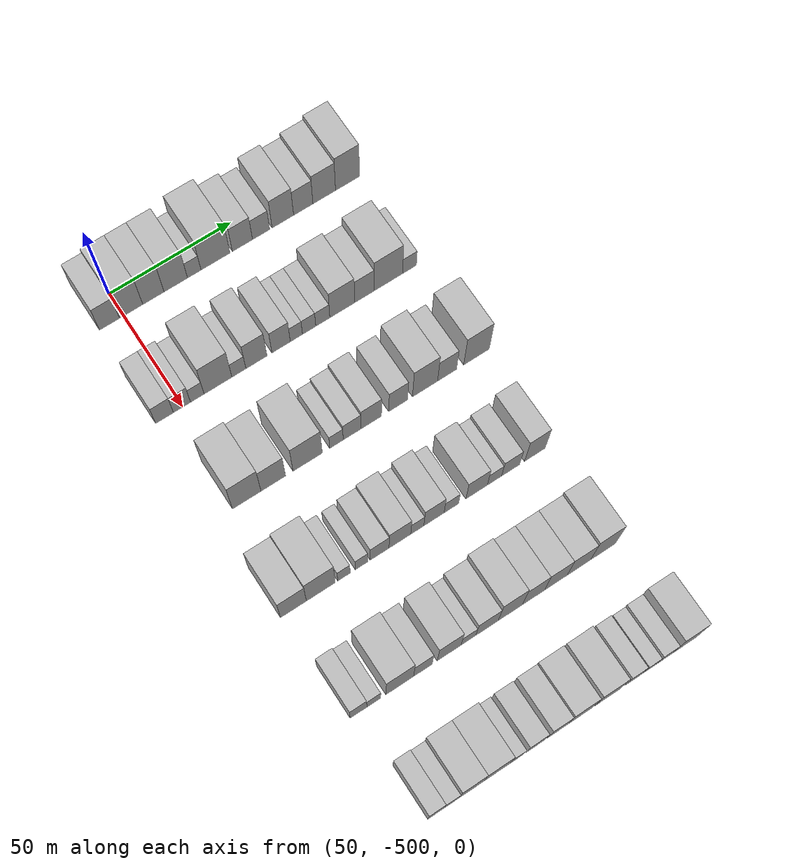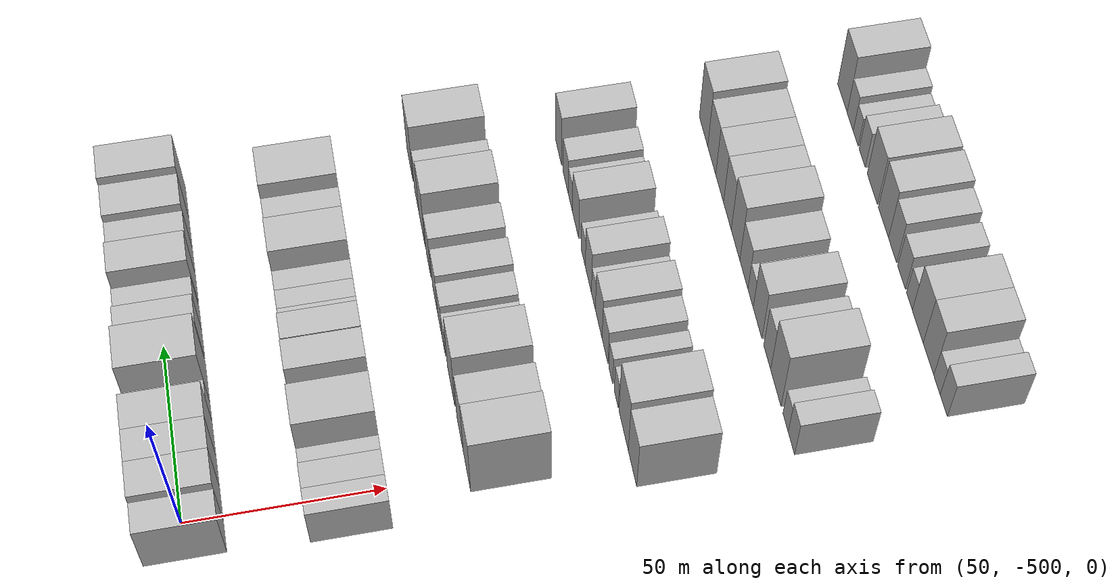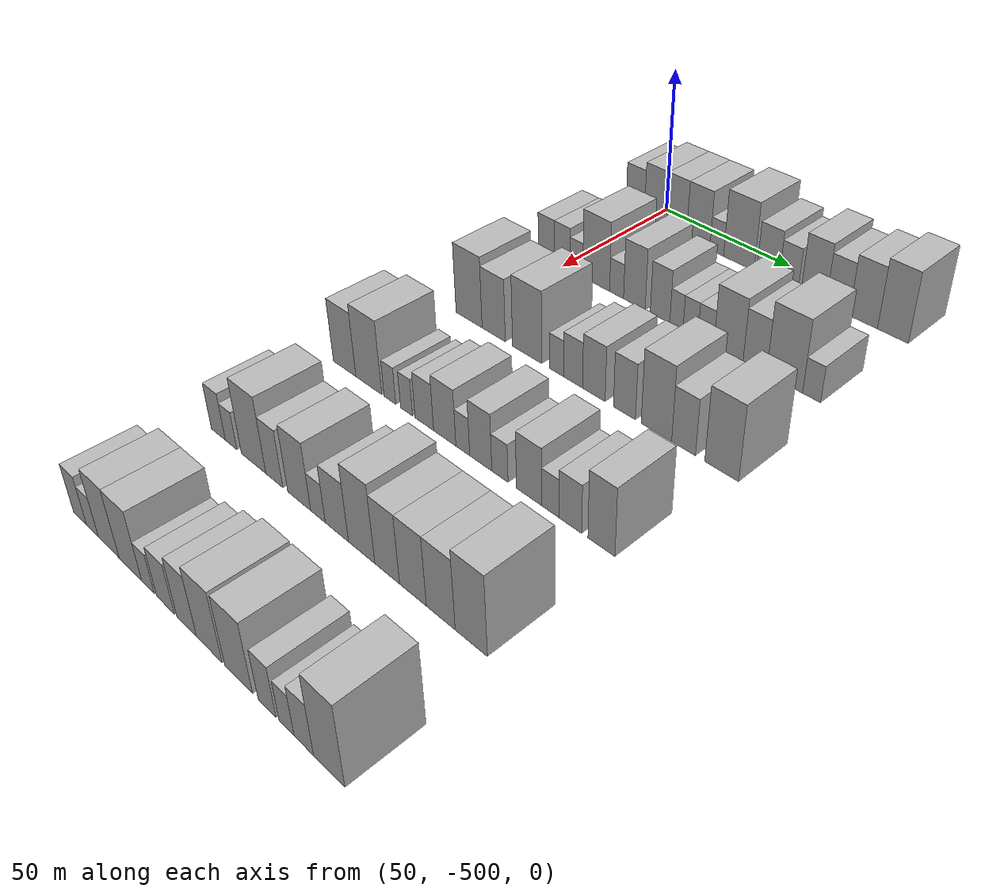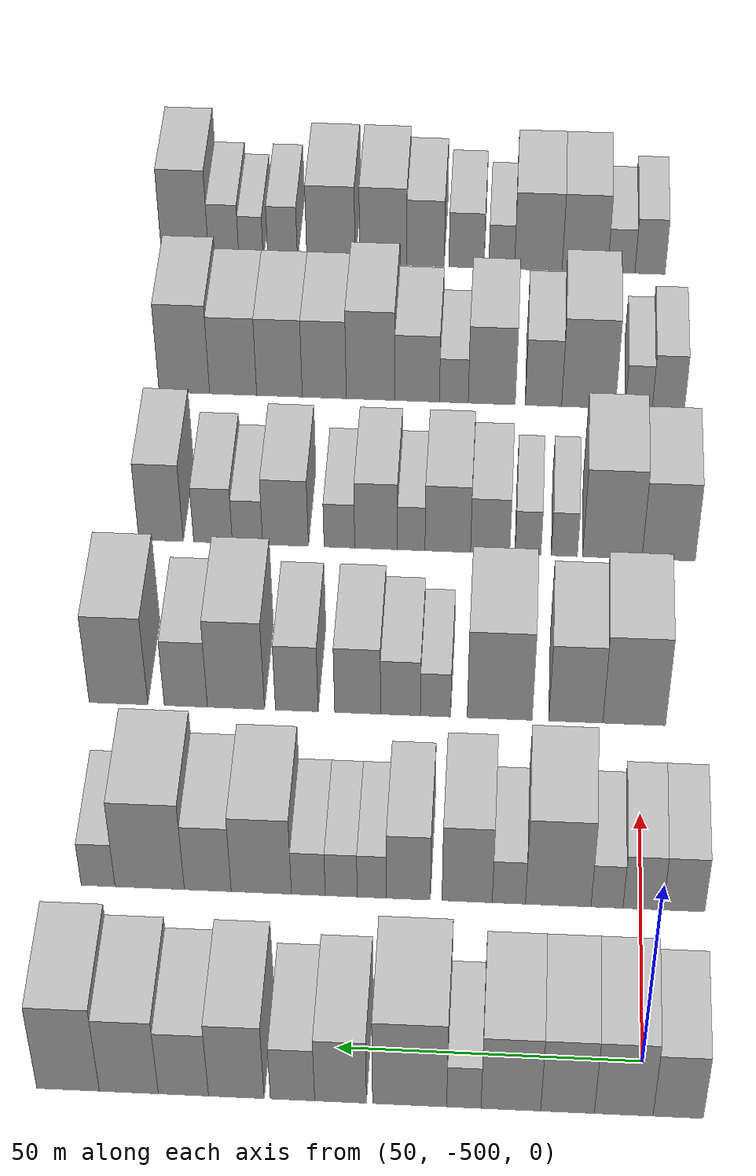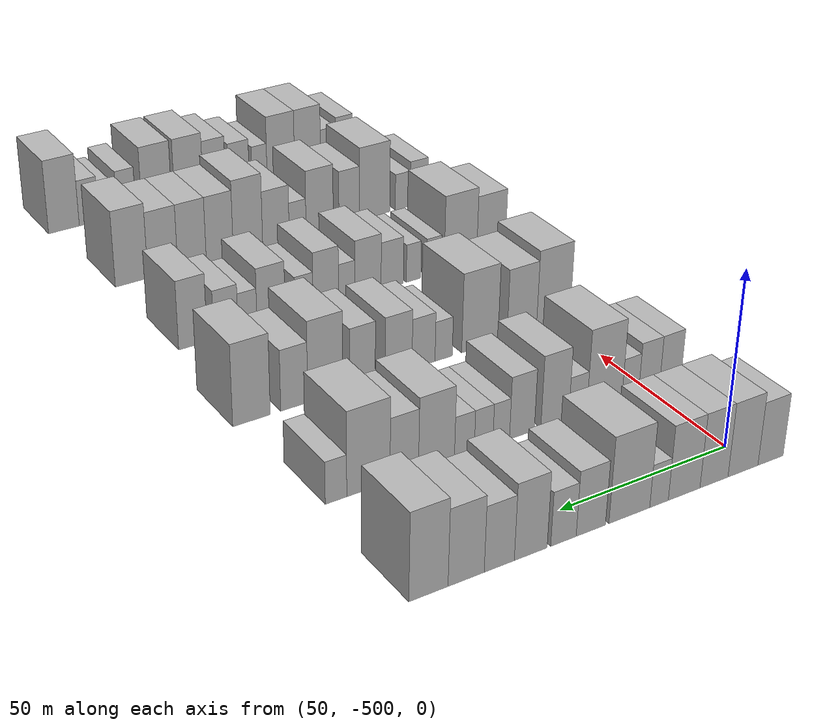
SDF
<sdf version="1.6">
 <world name="default">
  <model name="building_13">
   <static>1</static>
   <pose>50.0000 -505.6441 0 0.000000 0.000000 0.000000</pose>
   <link name="link">
    <pose>0 0 9.00 0 0 0</pose>
    <collision name="collision"><geometry><box><size>20.0000 8.0763 18.0000</size></box></geometry></collision>
    <visual name="visual">
     <cast_shadows>0</cast_shadows>
     <geometry><box><size>20.0000 8.0763 18.0000</size></box></geometry>
     <material>
      <script>
       <uri>model://HANNAS_wall/materials/scripts</uri>
       <uri>model://HANNAS_wall/materials/textures</uri>
       <name>vrc/HANNAS_wall</name>
      </script>
     </material>
    </visual>
   </link>
  </model>
  <model name="building_14">
   <static>1</static>
   <pose>50.0000 -496.8923 0 0.000000 0.000000 0.000000</pose>
   <link name="link">
    <pose>0 0 10.50 0 0 0</pose>
    <collision name="collision"><geometry><box><size>20.0000 9.4271 21.0000</size></box></geometry></collision>
    <visual name="visual">
     <cast_shadows>0</cast_shadows>
     <geometry><box><size>20.0000 9.4271 21.0000</size></box></geometry>
     <material>
      <script>
       <uri>model://HANNAS_wall/materials/scripts</uri>
       <uri>model://HANNAS_wall/materials/textures</uri>
       <name>vrc/HANNAS_wall</name>
      </script>
     </material>
    </visual>
   </link>
  </model>
  <model name="building_15">
   <static>1</static>
   <pose>50.0000 -487.8517 0 0.000000 0.000000 0.000000</pose>
   <link name="link">
    <pose>0 0 10.50 0 0 0</pose>
    <collision name="collision"><geometry><box><size>20.0000 8.6542 21.0000</size></box></geometry></collision>
    <visual name="visual">
     <cast_shadows>0</cast_shadows>
     <geometry><box><size>20.0000 8.6542 21.0000</size></box></geometry>
     <material>
      <script>
       <uri>model://HANNAS_wall/materials/scripts</uri>
       <uri>model://HANNAS_wall/materials/textures</uri>
       <name>vrc/HANNAS_wall</name>
      </script>
     </material>
    </visual>
   </link>
  </model>
  <model name="building_16">
   <static>1</static>
   <pose>50.0000 -478.7148 0 0.000000 0.000000 0.000000</pose>
   <link name="link">
    <pose>0 0 10.50 0 0 0</pose>
    <collision name="collision"><geometry><box><size>20.0000 9.6195 21.0000</size></box></geometry></collision>
    <visual name="visual">
     <cast_shadows>0</cast_shadows>
     <geometry><box><size>20.0000 9.6195 21.0000</size></box></geometry>
     <material>
      <script>
       <uri>model://HANNAS_wall/materials/scripts</uri>
       <uri>model://HANNAS_wall/materials/textures</uri>
       <name>vrc/HANNAS_wall</name>
      </script>
     </material>
    </visual>
   </link>
  </model>
  <model name="building_17">
   <static>1</static>
   <pose>50.0000 -471.1349 0 0.000000 0.000000 0.000000</pose>
   <link name="link">
    <pose>0 0 6.00 0 0 0</pose>
    <collision name="collision"><geometry><box><size>20.0000 5.5403 12.0000</size></box></geometry></collision>
    <visual name="visual">
     <cast_shadows>0</cast_shadows>
     <geometry><box><size>20.0000 5.5403 12.0000</size></box></geometry>
     <material>
      <script>
       <uri>model://HANNAS_wall/materials/scripts</uri>
       <uri>model://HANNAS_wall/materials/textures</uri>
       <name>vrc/HANNAS_wall</name>
      </script>
     </material>
    </visual>
   </link>
  </model>
  <model name="building_18">
   <static>1</static>
   <pose>50.0000 -462.3846 0 0.000000 0.000000 0.000000</pose>
   <link name="link">
    <pose>0 0 12.00 0 0 0</pose>
    <collision name="collision"><geometry><box><size>20.0000 11.9603 24.0000</size></box></geometry></collision>
    <visual name="visual">
     <cast_shadows>0</cast_shadows>
     <geometry><box><size>20.0000 11.9603 24.0000</size></box></geometry>
     <material>
      <script>
       <uri>model://HANNAS_wall/materials/scripts</uri>
       <uri>model://HANNAS_wall/materials/textures</uri>
       <name>vrc/HANNAS_wall</name>
      </script>
     </material>
    </visual>
   </link>
  </model>
  <model name="building_19">
   <static>1</static>
   <pose>50.0000 -451.2160 0 0.000000 0.000000 0.000000</pose>
   <link name="link">
    <pose>0 0 9.00 0 0 0</pose>
    <collision name="collision"><geometry><box><size>20.0000 8.3768 18.0000</size></box></geometry></collision>
    <visual name="visual">
     <cast_shadows>0</cast_shadows>
     <geometry><box><size>20.0000 8.3768 18.0000</size></box></geometry>
     <material>
      <script>
       <uri>model://HANNAS_wall/materials/scripts</uri>
       <uri>model://HANNAS_wall/materials/textures</uri>
       <name>vrc/HANNAS_wall</name>
      </script>
     </material>
    </visual>
   </link>
  </model>
  <model name="building_20">
   <static>1</static>
   <pose>50.0000 -443.4394 0 0.000000 0.000000 0.000000</pose>
   <link name="link">
    <pose>0 0 7.50 0 0 0</pose>
    <collision name="collision"><geometry><box><size>20.0000 7.1763 15.0000</size></box></geometry></collision>
    <visual name="visual">
     <cast_shadows>0</cast_shadows>
     <geometry><box><size>20.0000 7.1763 15.0000</size></box></geometry>
     <material>
      <script>
       <uri>model://HANNAS_wall/materials/scripts</uri>
       <uri>model://HANNAS_wall/materials/textures</uri>
       <name>vrc/HANNAS_wall</name>
      </script>
     </material>
    </visual>
   </link>
  </model>
  <model name="building_21">
   <static>1</static>
   <pose>50.0000 -434.3271 0 0.000000 0.000000 0.000000</pose>
   <link name="link">
    <pose>0 0 10.50 0 0 0</pose>
    <collision name="collision"><geometry><box><size>20.0000 9.0483 21.0000</size></box></geometry></collision>
    <visual name="visual">
     <cast_shadows>0</cast_shadows>
     <geometry><box><size>20.0000 9.0483 21.0000</size></box></geometry>
     <material>
      <script>
       <uri>model://HANNAS_wall/materials/scripts</uri>
       <uri>model://HANNAS_wall/materials/textures</uri>
       <name>vrc/HANNAS_wall</name>
      </script>
     </material>
    </visual>
   </link>
  </model>
  <model name="building_22">
   <static>1</static>
   <pose>50.0000 -425.7287 0 0.000000 0.000000 0.000000</pose>
   <link name="link">
    <pose>0 0 9.00 0 0 0</pose>
    <collision name="collision"><geometry><box><size>20.0000 8.1485 18.0000</size></box></geometry></collision>
    <visual name="visual">
     <cast_shadows>0</cast_shadows>
     <geometry><box><size>20.0000 8.1485 18.0000</size></box></geometry>
     <material>
      <script>
       <uri>model://HANNAS_wall/materials/scripts</uri>
       <uri>model://HANNAS_wall/materials/textures</uri>
       <name>vrc/HANNAS_wall</name>
      </script>
     </material>
    </visual>
   </link>
  </model>
  <model name="building_23">
   <static>1</static>
   <pose>50.0000 -416.8544 0 0.000000 0.000000 0.000000</pose>
   <link name="link">
    <pose>0 0 10.50 0 0 0</pose>
    <collision name="collision"><geometry><box><size>20.0000 9.6000 21.0000</size></box></geometry></collision>
    <visual name="visual">
     <cast_shadows>0</cast_shadows>
     <geometry><box><size>20.0000 9.6000 21.0000</size></box></geometry>
     <material>
      <script>
       <uri>model://HANNAS_wall/materials/scripts</uri>
       <uri>model://HANNAS_wall/materials/textures</uri>
       <name>vrc/HANNAS_wall</name>
      </script>
     </material>
    </visual>
   </link>
  </model>
  <model name="building_24">
   <static>1</static>
   <pose>50.0000 -406.9556 0 0.000000 0.000000 0.000000</pose>
   <link name="link">
    <pose>0 0 12.00 0 0 0</pose>
    <collision name="collision"><geometry><box><size>20.0000 10.1977 24.0000</size></box></geometry></collision>
    <visual name="visual">
     <cast_shadows>0</cast_shadows>
     <geometry><box><size>20.0000 10.1977 24.0000</size></box></geometry>
     <material>
      <script>
       <uri>model://HANNAS_wall/materials/scripts</uri>
       <uri>model://HANNAS_wall/materials/textures</uri>
       <name>vrc/HANNAS_wall</name>
      </script>
     </material>
    </visual>
   </link>
  </model>
  <model name="building_150">
   <static>1</static>
   <pose>90.0000 -507.3038 0 0.000000 0.000000 0.000000</pose>
   <link name="link">
    <pose>0 0 7.50 0 0 0</pose>
    <collision name="collision"><geometry><box><size>20.0000 7.0903 15.0000</size></box></geometry></collision>
    <visual name="visual">
     <cast_shadows>0</cast_shadows>
     <geometry><box><size>20.0000 7.0903 15.0000</size></box></geometry>
     <material>
      <script>
       <uri>model://HANNAS_wall/materials/scripts</uri>
       <uri>model://HANNAS_wall/materials/textures</uri>
       <name>vrc/HANNAS_wall</name>
      </script>
     </material>
    </visual>
   </link>
  </model>
  <model name="building_151">
   <static>1</static>
   <pose>90.0000 -500.3334 0 0.000000 0.000000 0.000000</pose>
   <link name="link">
    <pose>0 0 7.50 0 0 0</pose>
    <collision name="collision"><geometry><box><size>20.0000 6.8506 15.0000</size></box></geometry></collision>
    <visual name="visual">
     <cast_shadows>0</cast_shadows>
     <geometry><box><size>20.0000 6.8506 15.0000</size></box></geometry>
     <material>
      <script>
       <uri>model://HANNAS_wall/materials/scripts</uri>
       <uri>model://HANNAS_wall/materials/textures</uri>
       <name>vrc/HANNAS_wall</name>
      </script>
     </material>
    </visual>
   </link>
  </model>
  <model name="building_152">
   <static>1</static>
   <pose>90.0000 -494.1886 0 0.000000 0.000000 0.000000</pose>
   <link name="link">
    <pose>0 0 6.00 0 0 0</pose>
    <collision name="collision"><geometry><box><size>20.0000 5.4390 12.0000</size></box></geometry></collision>
    <visual name="visual">
     <cast_shadows>0</cast_shadows>
     <geometry><box><size>20.0000 5.4390 12.0000</size></box></geometry>
     <material>
      <script>
       <uri>model://HANNAS_wall/materials/scripts</uri>
       <uri>model://HANNAS_wall/materials/textures</uri>
       <name>vrc/HANNAS_wall</name>
      </script>
     </material>
    </visual>
   </link>
  </model>
  <model name="building_153">
   <static>1</static>
   <pose>90.0000 -485.8683 0 0.000000 0.000000 0.000000</pose>
   <link name="link">
    <pose>0 0 12.00 0 0 0</pose>
    <collision name="collision"><geometry><box><size>20.0000 11.2016 24.0000</size></box></geometry></collision>
    <visual name="visual">
     <cast_shadows>0</cast_shadows>
     <geometry><box><size>20.0000 11.2016 24.0000</size></box></geometry>
     <material>
      <script>
       <uri>model://HANNAS_wall/materials/scripts</uri>
       <uri>model://HANNAS_wall/materials/textures</uri>
       <name>vrc/HANNAS_wall</name>
      </script>
     </material>
    </visual>
   </link>
  </model>
  <model name="building_154">
   <static>1</static>
   <pose>90.0000 -477.4317 0 0.000000 0.000000 0.000000</pose>
   <link name="link">
    <pose>0 0 6.00 0 0 0</pose>
    <collision name="collision"><geometry><box><size>20.0000 5.6716 12.0000</size></box></geometry></collision>
    <visual name="visual">
     <cast_shadows>0</cast_shadows>
     <geometry><box><size>20.0000 5.6716 12.0000</size></box></geometry>
     <material>
      <script>
       <uri>model://HANNAS_wall/materials/scripts</uri>
       <uri>model://HANNAS_wall/materials/textures</uri>
       <name>vrc/HANNAS_wall</name>
      </script>
     </material>
    </visual>
   </link>
  </model>
  <model name="building_155">
   <static>1</static>
   <pose>90.0000 -470.3024 0 0.000000 0.000000 0.000000</pose>
   <link name="link">
    <pose>0 0 10.50 0 0 0</pose>
    <collision name="collision"><geometry><box><size>20.0000 8.5871 21.0000</size></box></geometry></collision>
    <visual name="visual">
     <cast_shadows>0</cast_shadows>
     <geometry><box><size>20.0000 8.5871 21.0000</size></box></geometry>
     <material>
      <script>
       <uri>model://HANNAS_wall/materials/scripts</uri>
       <uri>model://HANNAS_wall/materials/textures</uri>
       <name>vrc/HANNAS_wall</name>
      </script>
     </material>
    </visual>
   </link>
  </model>
  <model name="building_156">
   <static>1</static>
   <pose>90.0000 -460.2430 0 0.000000 0.000000 0.000000</pose>
   <link name="link">
    <pose>0 0 9.00 0 0 0</pose>
    <collision name="collision"><geometry><box><size>20.0000 7.5317 18.0000</size></box></geometry></collision>
    <visual name="visual">
     <cast_shadows>0</cast_shadows>
     <geometry><box><size>20.0000 7.5317 18.0000</size></box></geometry>
     <material>
      <script>
       <uri>model://HANNAS_wall/materials/scripts</uri>
       <uri>model://HANNAS_wall/materials/textures</uri>
       <name>vrc/HANNAS_wall</name>
      </script>
     </material>
    </visual>
   </link>
  </model>
  <model name="building_157">
   <static>1</static>
   <pose>90.0000 -453.9804 0 0.000000 0.000000 0.000000</pose>
   <link name="link">
    <pose>0 0 6.00 0 0 0</pose>
    <collision name="collision"><geometry><box><size>20.0000 4.9935 12.0000</size></box></geometry></collision>
    <visual name="visual">
     <cast_shadows>0</cast_shadows>
     <geometry><box><size>20.0000 4.9935 12.0000</size></box></geometry>
     <material>
      <script>
       <uri>model://HANNAS_wall/materials/scripts</uri>
       <uri>model://HANNAS_wall/materials/textures</uri>
       <name>vrc/HANNAS_wall</name>
      </script>
     </material>
    </visual>
   </link>
  </model>
  <model name="building_158">
   <static>1</static>
   <pose>90.0000 -448.7401 0 0.000000 0.000000 0.000000</pose>
   <link name="link">
    <pose>0 0 6.00 0 0 0</pose>
    <collision name="collision"><geometry><box><size>20.0000 5.4872 12.0000</size></box></geometry></collision>
    <visual name="visual">
     <cast_shadows>0</cast_shadows>
     <geometry><box><size>20.0000 5.4872 12.0000</size></box></geometry>
     <material>
      <script>
       <uri>model://HANNAS_wall/materials/scripts</uri>
       <uri>model://HANNAS_wall/materials/textures</uri>
       <name>vrc/HANNAS_wall</name>
      </script>
     </material>
    </visual>
   </link>
  </model>
  <model name="building_159">
   <static>1</static>
   <pose>90.0000 -443.0930 0 0.000000 0.000000 0.000000</pose>
   <link name="link">
    <pose>0 0 6.00 0 0 0</pose>
    <collision name="collision"><geometry><box><size>20.0000 5.8069 12.0000</size></box></geometry></collision>
    <visual name="visual">
     <cast_shadows>0</cast_shadows>
     <geometry><box><size>20.0000 5.8069 12.0000</size></box></geometry>
     <material>
      <script>
       <uri>model://HANNAS_wall/materials/scripts</uri>
       <uri>model://HANNAS_wall/materials/textures</uri>
       <name>vrc/HANNAS_wall</name>
      </script>
     </material>
    </visual>
   </link>
  </model>
  <model name="building_160">
   <static>1</static>
   <pose>90.0000 -435.0100 0 0.000000 0.000000 0.000000</pose>
   <link name="link">
    <pose>0 0 10.50 0 0 0</pose>
    <collision name="collision"><geometry><box><size>20.0000 10.3591 21.0000</size></box></geometry></collision>
    <visual name="visual">
     <cast_shadows>0</cast_shadows>
     <geometry><box><size>20.0000 10.3591 21.0000</size></box></geometry>
     <material>
      <script>
       <uri>model://HANNAS_wall/materials/scripts</uri>
       <uri>model://HANNAS_wall/materials/textures</uri>
       <name>vrc/HANNAS_wall</name>
      </script>
     </material>
    </visual>
   </link>
  </model>
  <model name="building_161">
   <static>1</static>
   <pose>90.0000 -425.7991 0 0.000000 0.000000 0.000000</pose>
   <link name="link">
    <pose>0 0 9.00 0 0 0</pose>
    <collision name="collision"><geometry><box><size>20.0000 8.0628 18.0000</size></box></geometry></collision>
    <visual name="visual">
     <cast_shadows>0</cast_shadows>
     <geometry><box><size>20.0000 8.0628 18.0000</size></box></geometry>
     <material>
      <script>
       <uri>model://HANNAS_wall/materials/scripts</uri>
       <uri>model://HANNAS_wall/materials/textures</uri>
       <name>vrc/HANNAS_wall</name>
      </script>
     </material>
    </visual>
   </link>
  </model>
  <model name="building_162">
   <static>1</static>
   <pose>90.0000 -415.7887 0 0.000000 0.000000 0.000000</pose>
   <link name="link">
    <pose>0 0 12.00 0 0 0</pose>
    <collision name="collision"><geometry><box><size>20.0000 11.9579 24.0000</size></box></geometry></collision>
    <visual name="visual">
     <cast_shadows>0</cast_shadows>
     <geometry><box><size>20.0000 11.9579 24.0000</size></box></geometry>
     <material>
      <script>
       <uri>model://HANNAS_wall/materials/scripts</uri>
       <uri>model://HANNAS_wall/materials/textures</uri>
       <name>vrc/HANNAS_wall</name>
      </script>
     </material>
    </visual>
   </link>
  </model>
  <model name="building_163">
   <static>1</static>
   <pose>90.0000 -406.8864 0 0.000000 0.000000 0.000000</pose>
   <link name="link">
    <pose>0 0 6.00 0 0 0</pose>
    <collision name="collision"><geometry><box><size>20.0000 5.8468 12.0000</size></box></geometry></collision>
    <visual name="visual">
     <cast_shadows>0</cast_shadows>
     <geometry><box><size>20.0000 5.8468 12.0000</size></box></geometry>
     <material>
      <script>
       <uri>model://HANNAS_wall/materials/scripts</uri>
       <uri>model://HANNAS_wall/materials/textures</uri>
       <name>vrc/HANNAS_wall</name>
      </script>
     </material>
    </visual>
   </link>
  </model>
  <model name="building_288">
   <static>1</static>
   <pose>130.0000 -499.0810 0 0.000000 0.000000 0.000000</pose>
   <link name="link">
    <pose>0 0 12.00 0 0 0</pose>
    <collision name="collision"><geometry><box><size>20.0000 11.2853 24.0000</size></box></geometry></collision>
    <visual name="visual">
     <cast_shadows>0</cast_shadows>
     <geometry><box><size>20.0000 11.2853 24.0000</size></box></geometry>
     <material>
      <script>
       <uri>model://HANNAS_wall/materials/scripts</uri>
       <uri>model://HANNAS_wall/materials/textures</uri>
       <name>vrc/HANNAS_wall</name>
      </script>
     </material>
    </visual>
   </link>
  </model>
  <model name="building_289">
   <static>1</static>
   <pose>130.0000 -488.5626 0 0.000000 0.000000 0.000000</pose>
   <link name="link">
    <pose>0 0 10.50 0 0 0</pose>
    <collision name="collision"><geometry><box><size>20.0000 9.7516 21.0000</size></box></geometry></collision>
    <visual name="visual">
     <cast_shadows>0</cast_shadows>
     <geometry><box><size>20.0000 9.7516 21.0000</size></box></geometry>
     <material>
      <script>
       <uri>model://HANNAS_wall/materials/scripts</uri>
       <uri>model://HANNAS_wall/materials/textures</uri>
       <name>vrc/HANNAS_wall</name>
      </script>
     </material>
    </visual>
   </link>
  </model>
  <model name="building_290">
   <static>1</static>
   <pose>130.0000 -474.8229 0 0.000000 0.000000 0.000000</pose>
   <link name="link">
    <pose>0 0 12.00 0 0 0</pose>
    <collision name="collision"><geometry><box><size>20.0000 11.7278 24.0000</size></box></geometry></collision>
    <visual name="visual">
     <cast_shadows>0</cast_shadows>
     <geometry><box><size>20.0000 11.7278 24.0000</size></box></geometry>
     <material>
      <script>
       <uri>model://HANNAS_wall/materials/scripts</uri>
       <uri>model://HANNAS_wall/materials/textures</uri>
       <name>vrc/HANNAS_wall</name>
      </script>
     </material>
    </visual>
   </link>
  </model>
  <model name="building_291">
   <static>1</static>
   <pose>130.0000 -463.2219 0 0.000000 0.000000 0.000000</pose>
   <link name="link">
    <pose>0 0 6.00 0 0 0</pose>
    <collision name="collision"><geometry><box><size>20.0000 5.4742 12.0000</size></box></geometry></collision>
    <visual name="visual">
     <cast_shadows>0</cast_shadows>
     <geometry><box><size>20.0000 5.4742 12.0000</size></box></geometry>
     <material>
      <script>
       <uri>model://HANNAS_wall/materials/scripts</uri>
       <uri>model://HANNAS_wall/materials/textures</uri>
       <name>vrc/HANNAS_wall</name>
      </script>
     </material>
    </visual>
   </link>
  </model>
  <model name="building_292">
   <static>1</static>
   <pose>130.0000 -456.8856 0 0.000000 0.000000 0.000000</pose>
   <link name="link">
    <pose>0 0 7.50 0 0 0</pose>
    <collision name="collision"><geometry><box><size>20.0000 7.1985 15.0000</size></box></geometry></collision>
    <visual name="visual">
     <cast_shadows>0</cast_shadows>
     <geometry><box><size>20.0000 7.1985 15.0000</size></box></geometry>
     <material>
      <script>
       <uri>model://HANNAS_wall/materials/scripts</uri>
       <uri>model://HANNAS_wall/materials/textures</uri>
       <name>vrc/HANNAS_wall</name>
      </script>
     </material>
    </visual>
   </link>
  </model>
  <model name="building_293">
   <static>1</static>
   <pose>130.0000 -449.1298 0 0.000000 0.000000 0.000000</pose>
   <link name="link">
    <pose>0 0 9.00 0 0 0</pose>
    <collision name="collision"><geometry><box><size>20.0000 8.3131 18.0000</size></box></geometry></collision>
    <visual name="visual">
     <cast_shadows>0</cast_shadows>
     <geometry><box><size>20.0000 8.3131 18.0000</size></box></geometry>
     <material>
      <script>
       <uri>model://HANNAS_wall/materials/scripts</uri>
       <uri>model://HANNAS_wall/materials/textures</uri>
       <name>vrc/HANNAS_wall</name>
      </script>
     </material>
    </visual>
   </link>
  </model>
  <model name="building_294">
   <static>1</static>
   <pose>130.0000 -438.0978 0 0.000000 0.000000 0.000000</pose>
   <link name="link">
    <pose>0 0 9.00 0 0 0</pose>
    <collision name="collision"><geometry><box><size>20.0000 7.7509 18.0000</size></box></geometry></collision>
    <visual name="visual">
     <cast_shadows>0</cast_shadows>
     <geometry><box><size>20.0000 7.7509 18.0000</size></box></geometry>
     <material>
      <script>
       <uri>model://HANNAS_wall/materials/scripts</uri>
       <uri>model://HANNAS_wall/materials/textures</uri>
       <name>vrc/HANNAS_wall</name>
      </script>
     </material>
    </visual>
   </link>
  </model>
  <model name="building_295">
   <static>1</static>
   <pose>130.0000 -427.0352 0 0.000000 0.000000 0.000000</pose>
   <link name="link">
    <pose>0 0 12.00 0 0 0</pose>
    <collision name="collision"><geometry><box><size>20.0000 10.3744 24.0000</size></box></geometry></collision>
    <visual name="visual">
     <cast_shadows>0</cast_shadows>
     <geometry><box><size>20.0000 10.3744 24.0000</size></box></geometry>
     <material>
      <script>
       <uri>model://HANNAS_wall/materials/scripts</uri>
       <uri>model://HANNAS_wall/materials/textures</uri>
       <name>vrc/HANNAS_wall</name>
      </script>
     </material>
    </visual>
   </link>
  </model>
  <model name="building_296">
   <static>1</static>
   <pose>130.0000 -417.9221 0 0.000000 0.000000 0.000000</pose>
   <link name="link">
    <pose>0 0 9.00 0 0 0</pose>
    <collision name="collision"><geometry><box><size>20.0000 7.8516 18.0000</size></box></geometry></collision>
    <visual name="visual">
     <cast_shadows>0</cast_shadows>
     <geometry><box><size>20.0000 7.8516 18.0000</size></box></geometry>
     <material>
      <script>
       <uri>model://HANNAS_wall/materials/scripts</uri>
       <uri>model://HANNAS_wall/materials/textures</uri>
       <name>vrc/HANNAS_wall</name>
      </script>
     </material>
    </visual>
   </link>
  </model>
  <model name="building_297">
   <static>1</static>
   <pose>130.0000 -405.6583 0 0.000000 0.000000 0.000000</pose>
   <link name="link">
    <pose>0 0 12.00 0 0 0</pose>
    <collision name="collision"><geometry><box><size>20.0000 10.6760 24.0000</size></box></geometry></collision>
    <visual name="visual">
     <cast_shadows>0</cast_shadows>
     <geometry><box><size>20.0000 10.6760 24.0000</size></box></geometry>
     <material>
      <script>
       <uri>model://HANNAS_wall/materials/scripts</uri>
       <uri>model://HANNAS_wall/materials/textures</uri>
       <name>vrc/HANNAS_wall</name>
      </script>
     </material>
    </visual>
   </link>
  </model>
  <model name="building_419">
   <static>1</static>
   <pose>170.0000 -505.8520 0 0.000000 0.000000 0.000000</pose>
   <link name="link">
    <pose>0 0 10.50 0 0 0</pose>
    <collision name="collision"><geometry><box><size>20.0000 10.0916 21.0000</size></box></geometry></collision>
    <visual name="visual">
     <cast_shadows>0</cast_shadows>
     <geometry><box><size>20.0000 10.0916 21.0000</size></box></geometry>
     <material>
      <script>
       <uri>model://HANNAS_wall/materials/scripts</uri>
       <uri>model://HANNAS_wall/materials/textures</uri>
       <name>vrc/HANNAS_wall</name>
      </script>
     </material>
    </visual>
   </link>
  </model>
  <model name="building_420">
   <static>1</static>
   <pose>170.0000 -495.1689 0 0.000000 0.000000 0.000000</pose>
   <link name="link">
    <pose>0 0 12.00 0 0 0</pose>
    <collision name="collision"><geometry><box><size>20.0000 11.2746 24.0000</size></box></geometry></collision>
    <visual name="visual">
     <cast_shadows>0</cast_shadows>
     <geometry><box><size>20.0000 11.2746 24.0000</size></box></geometry>
     <material>
      <script>
       <uri>model://HANNAS_wall/materials/scripts</uri>
       <uri>model://HANNAS_wall/materials/textures</uri>
       <name>vrc/HANNAS_wall</name>
      </script>
     </material>
    </visual>
   </link>
  </model>
  <model name="building_421">
   <static>1</static>
   <pose>170.0000 -486.0650 0 0.000000 0.000000 0.000000</pose>
   <link name="link">
    <pose>0 0 6.00 0 0 0</pose>
    <collision name="collision"><geometry><box><size>20.0000 4.9332 12.0000</size></box></geometry></collision>
    <visual name="visual">
     <cast_shadows>0</cast_shadows>
     <geometry><box><size>20.0000 4.9332 12.0000</size></box></geometry>
     <material>
      <script>
       <uri>model://HANNAS_wall/materials/scripts</uri>
       <uri>model://HANNAS_wall/materials/textures</uri>
       <name>vrc/HANNAS_wall</name>
      </script>
     </material>
    </visual>
   </link>
  </model>
  <model name="building_422">
   <static>1</static>
   <pose>170.0000 -479.1395 0 0.000000 0.000000 0.000000</pose>
   <link name="link">
    <pose>0 0 6.00 0 0 0</pose>
    <collision name="collision"><geometry><box><size>20.0000 4.9179 12.0000</size></box></geometry></collision>
    <visual name="visual">
     <cast_shadows>0</cast_shadows>
     <geometry><box><size>20.0000 4.9179 12.0000</size></box></geometry>
     <material>
      <script>
       <uri>model://HANNAS_wall/materials/scripts</uri>
       <uri>model://HANNAS_wall/materials/textures</uri>
       <name>vrc/HANNAS_wall</name>
      </script>
     </material>
    </visual>
   </link>
  </model>
  <model name="building_423">
   <static>1</static>
   <pose>170.0000 -471.9558 0 0.000000 0.000000 0.000000</pose>
   <link name="link">
    <pose>0 0 7.50 0 0 0</pose>
    <collision name="collision"><geometry><box><size>20.0000 7.4496 15.0000</size></box></geometry></collision>
    <visual name="visual">
     <cast_shadows>0</cast_shadows>
     <geometry><box><size>20.0000 7.4496 15.0000</size></box></geometry>
     <material>
      <script>
       <uri>model://HANNAS_wall/materials/scripts</uri>
       <uri>model://HANNAS_wall/materials/textures</uri>
       <name>vrc/HANNAS_wall</name>
      </script>
     </material>
    </visual>
   </link>
  </model>
  <model name="building_424">
   <static>1</static>
   <pose>170.0000 -463.8866 0 0.000000 0.000000 0.000000</pose>
   <link name="link">
    <pose>0 0 9.00 0 0 0</pose>
    <collision name="collision"><geometry><box><size>20.0000 8.6887 18.0000</size></box></geometry></collision>
    <visual name="visual">
     <cast_shadows>0</cast_shadows>
     <geometry><box><size>20.0000 8.6887 18.0000</size></box></geometry>
     <material>
      <script>
       <uri>model://HANNAS_wall/materials/scripts</uri>
       <uri>model://HANNAS_wall/materials/textures</uri>
       <name>vrc/HANNAS_wall</name>
      </script>
     </material>
    </visual>
   </link>
  </model>
  <model name="building_425">
   <static>1</static>
   <pose>170.0000 -456.9240 0 0.000000 0.000000 0.000000</pose>
   <link name="link">
    <pose>0 0 6.00 0 0 0</pose>
    <collision name="collision"><geometry><box><size>20.0000 5.2365 12.0000</size></box></geometry></collision>
    <visual name="visual">
     <cast_shadows>0</cast_shadows>
     <geometry><box><size>20.0000 5.2365 12.0000</size></box></geometry>
     <material>
      <script>
       <uri>model://HANNAS_wall/materials/scripts</uri>
       <uri>model://HANNAS_wall/materials/textures</uri>
       <name>vrc/HANNAS_wall</name>
      </script>
     </material>
    </visual>
   </link>
  </model>
  <model name="building_426">
   <static>1</static>
   <pose>170.0000 -450.2254 0 0.000000 0.000000 0.000000</pose>
   <link name="link">
    <pose>0 0 9.00 0 0 0</pose>
    <collision name="collision"><geometry><box><size>20.0000 8.1605 18.0000</size></box></geometry></collision>
    <visual name="visual">
     <cast_shadows>0</cast_shadows>
     <geometry><box><size>20.0000 8.1605 18.0000</size></box></geometry>
     <material>
      <script>
       <uri>model://HANNAS_wall/materials/scripts</uri>
       <uri>model://HANNAS_wall/materials/textures</uri>
       <name>vrc/HANNAS_wall</name>
      </script>
     </material>
    </visual>
   </link>
  </model>
  <model name="building_427">
   <static>1</static>
   <pose>170.0000 -443.2182 0 0.000000 0.000000 0.000000</pose>
   <link name="link">
    <pose>0 0 6.00 0 0 0</pose>
    <collision name="collision"><geometry><box><size>20.0000 5.8540 12.0000</size></box></geometry></collision>
    <visual name="visual">
     <cast_shadows>0</cast_shadows>
     <geometry><box><size>20.0000 5.8540 12.0000</size></box></geometry>
     <material>
      <script>
       <uri>model://HANNAS_wall/materials/scripts</uri>
       <uri>model://HANNAS_wall/materials/textures</uri>
       <name>vrc/HANNAS_wall</name>
      </script>
     </material>
    </visual>
   </link>
  </model>
  <model name="building_428">
   <static>1</static>
   <pose>170.0000 -432.9225 0 0.000000 0.000000 0.000000</pose>
   <link name="link">
    <pose>0 0 9.00 0 0 0</pose>
    <collision name="collision"><geometry><box><size>20.0000 8.7373 18.0000</size></box></geometry></collision>
    <visual name="visual">
     <cast_shadows>0</cast_shadows>
     <geometry><box><size>20.0000 8.7373 18.0000</size></box></geometry>
     <material>
      <script>
       <uri>model://HANNAS_wall/materials/scripts</uri>
       <uri>model://HANNAS_wall/materials/textures</uri>
       <name>vrc/HANNAS_wall</name>
      </script>
     </material>
    </visual>
   </link>
  </model>
  <model name="building_429">
   <static>1</static>
   <pose>170.0000 -425.6439 0 0.000000 0.000000 0.000000</pose>
   <link name="link">
    <pose>0 0 6.00 0 0 0</pose>
    <collision name="collision"><geometry><box><size>20.0000 5.8200 12.0000</size></box></geometry></collision>
    <visual name="visual">
     <cast_shadows>0</cast_shadows>
     <geometry><box><size>20.0000 5.8200 12.0000</size></box></geometry>
     <material>
      <script>
       <uri>model://HANNAS_wall/materials/scripts</uri>
       <uri>model://HANNAS_wall/materials/textures</uri>
       <name>vrc/HANNAS_wall</name>
      </script>
     </material>
    </visual>
   </link>
  </model>
  <model name="building_430">
   <static>1</static>
   <pose>170.0000 -419.0277 0 0.000000 0.000000 0.000000</pose>
   <link name="link">
    <pose>0 0 7.50 0 0 0</pose>
    <collision name="collision"><geometry><box><size>20.0000 7.4123 15.0000</size></box></geometry></collision>
    <visual name="visual">
     <cast_shadows>0</cast_shadows>
     <geometry><box><size>20.0000 7.4123 15.0000</size></box></geometry>
     <material>
      <script>
       <uri>model://HANNAS_wall/materials/scripts</uri>
       <uri>model://HANNAS_wall/materials/textures</uri>
       <name>vrc/HANNAS_wall</name>
      </script>
     </material>
    </visual>
   </link>
  </model>
  <model name="building_431">
   <static>1</static>
   <pose>170.0000 -409.0659 0 0.000000 0.000000 0.000000</pose>
   <link name="link">
    <pose>0 0 10.50 0 0 0</pose>
    <collision name="collision"><geometry><box><size>20.0000 8.5114 21.0000</size></box></geometry></collision>
    <visual name="visual">
     <cast_shadows>0</cast_shadows>
     <geometry><box><size>20.0000 8.5114 21.0000</size></box></geometry>
     <material>
      <script>
       <uri>model://HANNAS_wall/materials/scripts</uri>
       <uri>model://HANNAS_wall/materials/textures</uri>
       <name>vrc/HANNAS_wall</name>
      </script>
     </material>
    </visual>
   </link>
  </model>
  <model name="building_556">
   <static>1</static>
   <pose>210.0000 -506.3610 0 0.000000 0.000000 0.000000</pose>
   <link name="link">
    <pose>0 0 7.50 0 0 0</pose>
    <collision name="collision"><geometry><box><size>20.0000 6.4075 15.0000</size></box></geometry></collision>
    <visual name="visual">
     <cast_shadows>0</cast_shadows>
     <geometry><box><size>20.0000 6.4075 15.0000</size></box></geometry>
     <material>
      <script>
       <uri>model://HANNAS_wall/materials/scripts</uri>
       <uri>model://HANNAS_wall/materials/textures</uri>
       <name>vrc/HANNAS_wall</name>
      </script>
     </material>
    </visual>
   </link>
  </model>
  <model name="building_557">
   <static>1</static>
   <pose>210.0000 -500.4917 0 0.000000 0.000000 0.000000</pose>
   <link name="link">
    <pose>0 0 6.00 0 0 0</pose>
    <collision name="collision"><geometry><box><size>20.0000 5.3309 12.0000</size></box></geometry></collision>
    <visual name="visual">
     <cast_shadows>0</cast_shadows>
     <geometry><box><size>20.0000 5.3309 12.0000</size></box></geometry>
     <material>
      <script>
       <uri>model://HANNAS_wall/materials/scripts</uri>
       <uri>model://HANNAS_wall/materials/textures</uri>
       <name>vrc/HANNAS_wall</name>
      </script>
     </material>
    </visual>
   </link>
  </model>
  <model name="building_558">
   <static>1</static>
   <pose>210.0000 -490.4573 0 0.000000 0.000000 0.000000</pose>
   <link name="link">
    <pose>0 0 12.00 0 0 0</pose>
    <collision name="collision"><geometry><box><size>20.0000 10.7380 24.0000</size></box></geometry></collision>
    <visual name="visual">
     <cast_shadows>0</cast_shadows>
     <geometry><box><size>20.0000 10.7380 24.0000</size></box></geometry>
     <material>
      <script>
       <uri>model://HANNAS_wall/materials/scripts</uri>
       <uri>model://HANNAS_wall/materials/textures</uri>
       <name>vrc/HANNAS_wall</name>
      </script>
     </material>
    </visual>
   </link>
  </model>
  <model name="building_559">
   <static>1</static>
   <pose>210.0000 -481.4583 0 0.000000 0.000000 0.000000</pose>
   <link name="link">
    <pose>0 0 9.00 0 0 0</pose>
    <collision name="collision"><geometry><box><size>20.0000 7.2598 18.0000</size></box></geometry></collision>
    <visual name="visual">
     <cast_shadows>0</cast_shadows>
     <geometry><box><size>20.0000 7.2598 18.0000</size></box></geometry>
     <material>
      <script>
       <uri>model://HANNAS_wall/materials/scripts</uri>
       <uri>model://HANNAS_wall/materials/textures</uri>
       <name>vrc/HANNAS_wall</name>
      </script>
     </material>
    </visual>
   </link>
  </model>
  <model name="building_560">
   <static>1</static>
   <pose>210.0000 -471.1302 0 0.000000 0.000000 0.000000</pose>
   <link name="link">
    <pose>0 0 10.50 0 0 0</pose>
    <collision name="collision"><geometry><box><size>20.0000 9.3964 21.0000</size></box></geometry></collision>
    <visual name="visual">
     <cast_shadows>0</cast_shadows>
     <geometry><box><size>20.0000 9.3964 21.0000</size></box></geometry>
     <material>
      <script>
       <uri>model://HANNAS_wall/materials/scripts</uri>
       <uri>model://HANNAS_wall/materials/textures</uri>
       <name>vrc/HANNAS_wall</name>
      </script>
     </material>
    </visual>
   </link>
  </model>
  <model name="building_561">
   <static>1</static>
   <pose>210.0000 -463.5534 0 0.000000 0.000000 0.000000</pose>
   <link name="link">
    <pose>0 0 6.00 0 0 0</pose>
    <collision name="collision"><geometry><box><size>20.0000 5.7572 12.0000</size></box></geometry></collision>
    <visual name="visual">
     <cast_shadows>0</cast_shadows>
     <geometry><box><size>20.0000 5.7572 12.0000</size></box></geometry>
     <material>
      <script>
       <uri>model://HANNAS_wall/materials/scripts</uri>
       <uri>model://HANNAS_wall/materials/textures</uri>
       <name>vrc/HANNAS_wall</name>
      </script>
     </material>
    </visual>
   </link>
  </model>
  <model name="building_562">
   <static>1</static>
   <pose>210.0000 -456.2050 0 0.000000 0.000000 0.000000</pose>
   <link name="link">
    <pose>0 0 9.00 0 0 0</pose>
    <collision name="collision"><geometry><box><size>20.0000 8.9397 18.0000</size></box></geometry></collision>
    <visual name="visual">
     <cast_shadows>0</cast_shadows>
     <geometry><box><size>20.0000 8.9397 18.0000</size></box></geometry>
     <material>
      <script>
       <uri>model://HANNAS_wall/materials/scripts</uri>
       <uri>model://HANNAS_wall/materials/textures</uri>
       <name>vrc/HANNAS_wall</name>
      </script>
     </material>
    </visual>
   </link>
  </model>
  <model name="building_563">
   <static>1</static>
   <pose>210.0000 -446.8629 0 0.000000 0.000000 0.000000</pose>
   <link name="link">
    <pose>0 0 12.00 0 0 0</pose>
    <collision name="collision"><geometry><box><size>20.0000 9.7445 24.0000</size></box></geometry></collision>
    <visual name="visual">
     <cast_shadows>0</cast_shadows>
     <geometry><box><size>20.0000 9.7445 24.0000</size></box></geometry>
     <material>
      <script>
       <uri>model://HANNAS_wall/materials/scripts</uri>
       <uri>model://HANNAS_wall/materials/textures</uri>
       <name>vrc/HANNAS_wall</name>
      </script>
     </material>
    </visual>
   </link>
  </model>
  <model name="building_564">
   <static>1</static>
   <pose>210.0000 -437.5739 0 0.000000 0.000000 0.000000</pose>
   <link name="link">
    <pose>0 0 10.50 0 0 0</pose>
    <collision name="collision"><geometry><box><size>20.0000 8.8333 21.0000</size></box></geometry></collision>
    <visual name="visual">
     <cast_shadows>0</cast_shadows>
     <geometry><box><size>20.0000 8.8333 21.0000</size></box></geometry>
     <material>
      <script>
       <uri>model://HANNAS_wall/materials/scripts</uri>
       <uri>model://HANNAS_wall/materials/textures</uri>
       <name>vrc/HANNAS_wall</name>
      </script>
     </material>
    </visual>
   </link>
  </model>
  <model name="building_565">
   <static>1</static>
   <pose>210.0000 -428.5736 0 0.000000 0.000000 0.000000</pose>
   <link name="link">
    <pose>0 0 10.50 0 0 0</pose>
    <collision name="collision"><geometry><box><size>20.0000 9.1672 21.0000</size></box></geometry></collision>
    <visual name="visual">
     <cast_shadows>0</cast_shadows>
     <geometry><box><size>20.0000 9.1672 21.0000</size></box></geometry>
     <material>
      <script>
       <uri>model://HANNAS_wall/materials/scripts</uri>
       <uri>model://HANNAS_wall/materials/textures</uri>
       <name>vrc/HANNAS_wall</name>
      </script>
     </material>
    </visual>
   </link>
  </model>
  <model name="building_566">
   <static>1</static>
   <pose>210.0000 -419.2494 0 0.000000 0.000000 0.000000</pose>
   <link name="link">
    <pose>0 0 10.50 0 0 0</pose>
    <collision name="collision"><geometry><box><size>20.0000 9.4814 21.0000</size></box></geometry></collision>
    <visual name="visual">
     <cast_shadows>0</cast_shadows>
     <geometry><box><size>20.0000 9.4814 21.0000</size></box></geometry>
     <material>
      <script>
       <uri>model://HANNAS_wall/materials/scripts</uri>
       <uri>model://HANNAS_wall/materials/textures</uri>
       <name>vrc/HANNAS_wall</name>
      </script>
     </material>
    </visual>
   </link>
  </model>
  <model name="building_567">
   <static>1</static>
   <pose>210.0000 -409.4207 0 0.000000 0.000000 0.000000</pose>
   <link name="link">
    <pose>0 0 12.00 0 0 0</pose>
    <collision name="collision"><geometry><box><size>20.0000 10.1760 24.0000</size></box></geometry></collision>
    <visual name="visual">
     <cast_shadows>0</cast_shadows>
     <geometry><box><size>20.0000 10.1760 24.0000</size></box></geometry>
     <material>
      <script>
       <uri>model://HANNAS_wall/materials/scripts</uri>
       <uri>model://HANNAS_wall/materials/textures</uri>
       <name>vrc/HANNAS_wall</name>
      </script>
     </material>
    </visual>
   </link>
  </model>
  <model name="building_700">
   <static>1</static>
   <pose>250.0000 -503.1138 0 0.000000 0.000000 0.000000</pose>
   <link name="link">
    <pose>0 0 7.50 0 0 0</pose>
    <collision name="collision"><geometry><box><size>20.0000 6.3061 15.0000</size></box></geometry></collision>
    <visual name="visual">
     <cast_shadows>0</cast_shadows>
     <geometry><box><size>20.0000 6.3061 15.0000</size></box></geometry>
     <material>
      <script>
       <uri>model://HANNAS_wall/materials/scripts</uri>
       <uri>model://HANNAS_wall/materials/textures</uri>
       <name>vrc/HANNAS_wall</name>
      </script>
     </material>
    </visual>
   </link>
  </model>
  <model name="building_701">
   <static>1</static>
   <pose>250.0000 -497.1283 0 0.000000 0.000000 0.000000</pose>
   <link name="link">
    <pose>0 0 6.00 0 0 0</pose>
    <collision name="collision"><geometry><box><size>20.0000 5.6650 12.0000</size></box></geometry></collision>
    <visual name="visual">
     <cast_shadows>0</cast_shadows>
     <geometry><box><size>20.0000 5.6650 12.0000</size></box></geometry>
     <material>
      <script>
       <uri>model://HANNAS_wall/materials/scripts</uri>
       <uri>model://HANNAS_wall/materials/textures</uri>
       <name>vrc/HANNAS_wall</name>
      </script>
     </material>
    </visual>
   </link>
  </model>
  <model name="building_702">
   <static>1</static>
   <pose>250.0000 -489.5163 0 0.000000 0.000000 0.000000</pose>
   <link name="link">
    <pose>0 0 10.50 0 0 0</pose>
    <collision name="collision"><geometry><box><size>20.0000 9.5589 21.0000</size></box></geometry></collision>
    <visual name="visual">
     <cast_shadows>0</cast_shadows>
     <geometry><box><size>20.0000 9.5589 21.0000</size></box></geometry>
     <material>
      <script>
       <uri>model://HANNAS_wall/materials/scripts</uri>
       <uri>model://HANNAS_wall/materials/textures</uri>
       <name>vrc/HANNAS_wall</name>
      </script>
     </material>
    </visual>
   </link>
  </model>
  <model name="building_703">
   <static>1</static>
   <pose>250.0000 -479.7472 0 0.000000 0.000000 0.000000</pose>
   <link name="link">
    <pose>0 0 10.50 0 0 0</pose>
    <collision name="collision"><geometry><box><size>20.0000 9.9794 21.0000</size></box></geometry></collision>
    <visual name="visual">
     <cast_shadows>0</cast_shadows>
     <geometry><box><size>20.0000 9.9794 21.0000</size></box></geometry>
     <material>
      <script>
       <uri>model://HANNAS_wall/materials/scripts</uri>
       <uri>model://HANNAS_wall/materials/textures</uri>
       <name>vrc/HANNAS_wall</name>
      </script>
     </material>
    </visual>
   </link>
  </model>
  <model name="building_704">
   <static>1</static>
   <pose>250.0000 -472.0713 0 0.000000 0.000000 0.000000</pose>
   <link name="link">
    <pose>0 0 6.00 0 0 0</pose>
    <collision name="collision"><geometry><box><size>20.0000 5.3722 12.0000</size></box></geometry></collision>
    <visual name="visual">
     <cast_shadows>0</cast_shadows>
     <geometry><box><size>20.0000 5.3722 12.0000</size></box></geometry>
     <material>
      <script>
       <uri>model://HANNAS_wall/materials/scripts</uri>
       <uri>model://HANNAS_wall/materials/textures</uri>
       <name>vrc/HANNAS_wall</name>
      </script>
     </material>
    </visual>
   </link>
  </model>
  <model name="building_705">
   <static>1</static>
   <pose>250.0000 -464.7066 0 0.000000 0.000000 0.000000</pose>
   <link name="link">
    <pose>0 0 7.50 0 0 0</pose>
    <collision name="collision"><geometry><box><size>20.0000 7.3573 15.0000</size></box></geometry></collision>
    <visual name="visual">
     <cast_shadows>0</cast_shadows>
     <geometry><box><size>20.0000 7.3573 15.0000</size></box></geometry>
     <material>
      <script>
       <uri>model://HANNAS_wall/materials/scripts</uri>
       <uri>model://HANNAS_wall/materials/textures</uri>
       <name>vrc/HANNAS_wall</name>
      </script>
     </material>
    </visual>
   </link>
  </model>
  <model name="building_706">
   <static>1</static>
   <pose>250.0000 -456.0989 0 0.000000 0.000000 0.000000</pose>
   <link name="link">
    <pose>0 0 9.00 0 0 0</pose>
    <collision name="collision"><geometry><box><size>20.0000 7.8579 18.0000</size></box></geometry></collision>
    <visual name="visual">
     <cast_shadows>0</cast_shadows>
     <geometry><box><size>20.0000 7.8579 18.0000</size></box></geometry>
     <material>
      <script>
       <uri>model://HANNAS_wall/materials/scripts</uri>
       <uri>model://HANNAS_wall/materials/textures</uri>
       <name>vrc/HANNAS_wall</name>
      </script>
     </material>
    </visual>
   </link>
  </model>
  <model name="building_707">
   <static>1</static>
   <pose>250.0000 -447.2398 0 0.000000 0.000000 0.000000</pose>
   <link name="link">
    <pose>0 0 10.50 0 0 0</pose>
    <collision name="collision"><geometry><box><size>20.0000 9.8604 21.0000</size></box></geometry></collision>
    <visual name="visual">
     <cast_shadows>0</cast_shadows>
     <geometry><box><size>20.0000 9.8604 21.0000</size></box></geometry>
     <material>
      <script>
       <uri>model://HANNAS_wall/materials/scripts</uri>
       <uri>model://HANNAS_wall/materials/textures</uri>
       <name>vrc/HANNAS_wall</name>
      </script>
     </material>
    </visual>
   </link>
  </model>
  <model name="building_708">
   <static>1</static>
   <pose>250.0000 -436.2406 0 0.000000 0.000000 0.000000</pose>
   <link name="link">
    <pose>0 0 10.50 0 0 0</pose>
    <collision name="collision"><geometry><box><size>20.0000 10.1380 21.0000</size></box></geometry></collision>
    <visual name="visual">
     <cast_shadows>0</cast_shadows>
     <geometry><box><size>20.0000 10.1380 21.0000</size></box></geometry>
     <material>
      <script>
       <uri>model://HANNAS_wall/materials/scripts</uri>
       <uri>model://HANNAS_wall/materials/textures</uri>
       <name>vrc/HANNAS_wall</name>
      </script>
     </material>
    </visual>
   </link>
  </model>
  <model name="building_709">
   <static>1</static>
   <pose>250.0000 -426.0554 0 0.000000 0.000000 0.000000</pose>
   <link name="link">
    <pose>0 0 7.50 0 0 0</pose>
    <collision name="collision"><geometry><box><size>20.0000 6.2323 15.0000</size></box></geometry></collision>
    <visual name="visual">
     <cast_shadows>0</cast_shadows>
     <geometry><box><size>20.0000 6.2323 15.0000</size></box></geometry>
     <material>
      <script>
       <uri>model://HANNAS_wall/materials/scripts</uri>
       <uri>model://HANNAS_wall/materials/textures</uri>
       <name>vrc/HANNAS_wall</name>
      </script>
     </material>
    </visual>
   </link>
  </model>
  <model name="building_710">
   <static>1</static>
   <pose>250.0000 -419.3855 0 0.000000 0.000000 0.000000</pose>
   <link name="link">
    <pose>0 0 6.00 0 0 0</pose>
    <collision name="collision"><geometry><box><size>20.0000 5.1076 12.0000</size></box></geometry></collision>
    <visual name="visual">
     <cast_shadows>0</cast_shadows>
     <geometry><box><size>20.0000 5.1076 12.0000</size></box></geometry>
     <material>
      <script>
       <uri>model://HANNAS_wall/materials/scripts</uri>
       <uri>model://HANNAS_wall/materials/textures</uri>
       <name>vrc/HANNAS_wall</name>
      </script>
     </material>
    </visual>
   </link>
  </model>
  <model name="building_711">
   <static>1</static>
   <pose>250.0000 -413.6439 0 0.000000 0.000000 0.000000</pose>
   <link name="link">
    <pose>0 0 7.50 0 0 0</pose>
    <collision name="collision"><geometry><box><size>20.0000 6.3755 15.0000</size></box></geometry></collision>
    <visual name="visual">
     <cast_shadows>0</cast_shadows>
     <geometry><box><size>20.0000 6.3755 15.0000</size></box></geometry>
     <material>
      <script>
       <uri>model://HANNAS_wall/materials/scripts</uri>
       <uri>model://HANNAS_wall/materials/textures</uri>
       <name>vrc/HANNAS_wall</name>
      </script>
     </material>
    </visual>
   </link>
  </model>
  <model name="building_712">
   <static>1</static>
   <pose>250.0000 -405.4942 0 0.000000 0.000000 0.000000</pose>
   <link name="link">
    <pose>0 0 12.00 0 0 0</pose>
    <collision name="collision"><geometry><box><size>20.0000 9.9239 24.0000</size></box></geometry></collision>
    <visual name="visual">
     <cast_shadows>0</cast_shadows>
     <geometry><box><size>20.0000 9.9239 24.0000</size></box></geometry>
     <material>
      <script>
       <uri>model://HANNAS_wall/materials/scripts</uri>
       <uri>model://HANNAS_wall/materials/textures</uri>
       <name>vrc/HANNAS_wall</name>
      </script>
     </material>
    </visual>
   </link>
  </model>
 </world>
</sdf>
